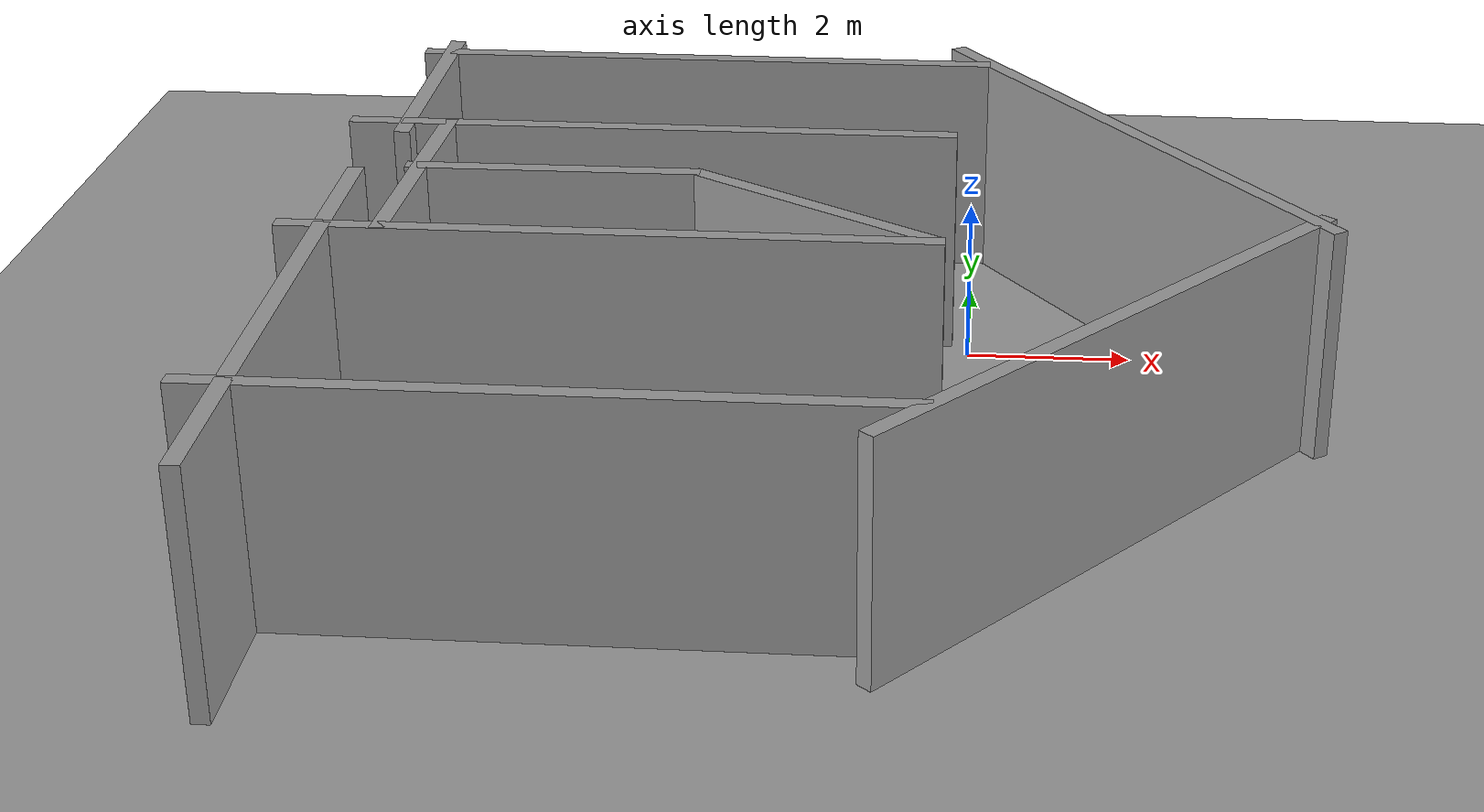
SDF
<sdf version="1.4">
 <world name="default">
  <light name="sun" type="directional">
   <pose>0 0 10 0 -0 0</pose>
   <diffuse>0.8 0.8 0.8 1</diffuse>
   <specular>0.2 0.2 0.2 1</specular>
   <attenuation>
    <range>1000</range>
    <constant>0.9</constant>
    <linear>0.01</linear>
    <quadratic>0.001</quadratic>
   </attenuation>
   <direction>0.5 0.1 -0.9</direction>
  </light>
  <scene><ambient>0.4 0.4 0.4 1</ambient><background>0.7 0.7 0.7 1</background><shadows>1</shadows></scene>
  <physics type="ode">
   <max_step_size>0.01</max_step_size>
   <real_time_factor>1</real_time_factor>
   <real_time_update_rate>100</real_time_update_rate>
   <gravity>0 0 -9.8</gravity>
  </physics>
  <model name="ground_plane_0">
   <static>1</static>
   <link name="link">
    <collision name="collision">
     <geometry><plane><normal>0 0 1</normal><size>100 100</size></plane></geometry>
     <surface><friction><ode><mu>100</mu><mu2>50</mu2></ode></friction></surface>
    </collision>
    <visual name="visual">
     <cast_shadows>0</cast_shadows>
     <geometry><plane><normal>0 0 1</normal><size>100 100</size></plane></geometry>
     <material>
      <script><uri>file://media/materials/scripts/gazebo.material</uri><name>Gazebo/Grey</name></script>
     </material>
    </visual>
    <velocity_decay><linear>0</linear><angular>0</angular></velocity_decay>
   </link>
   <pose>0.497681 0 0 0 -0 0</pose>
  </model>
  <spherical_coordinates>
   <surface_model>EARTH_WGS84</surface_model>
   <latitude_deg>0</latitude_deg>
   <longitude_deg>0</longitude_deg>
   <elevation>0</elevation>
   <heading_deg>0</heading_deg>
  </spherical_coordinates>
  <model name="peacock">
   <static>1</static>
   <link name="link">
    <collision name="collision">
     <geometry><plane><normal>0 0 1</normal><size>0.21 0.297</size></plane></geometry>
     <surface><friction><ode><mu>100</mu><mu2>50</mu2></ode></friction></surface>
    </collision>
    <visual name="visual">
     <pose>-8.09 -0.7 0.4 1.57 -5.55112e-17 1.57</pose>
     <cast_shadows>0</cast_shadows>
     <geometry><plane><normal>0 0 1</normal><size>0.21 0.297</size></plane></geometry>
     <material>
      <script>
       <uri>model://peacock/materials/scripts</uri>
       <uri>model://peacock/materials/textures</uri>
       <name>peacock/Image</name>
      </script>
     </material>
    </visual>
    <velocity_decay><linear>0</linear><angular>0</angular></velocity_decay>
   </link>
   <pose>1 -3 0 0 -0 0</pose>
  </model>
  <model name="grey_wall">
   <static>1</static>
   <link name="link">
    <pose>0 0 1.4 0 -0 0</pose>
    <collision name="collision"><geometry><box><size>7.5 0.2 2.8</size></box></geometry></collision>
    <visual name="visual">
     <cast_shadows>0</cast_shadows>
     <geometry><box><size>7.5 0.2 2.8</size></box></geometry>
     <material>
      <script>
       <uri>model://grey_wall/materials/scripts</uri>
       <uri>model://grey_wall/materials/textures</uri>
       <name>vrc/grey_wall</name>
      </script>
     </material>
    </visual>
    <velocity_decay><linear>0</linear><angular>0</angular></velocity_decay>
   </link>
   <pose>-3.58536 3.01081 0 0 -0 0</pose>
  </model>
  <model name="grey_wall_0">
   <static>1</static>
   <link name="link">
    <pose>0 0 1.4 0 -0 0</pose>
    <collision name="collision"><geometry><box><size>7.5 0.2 2.8</size></box></geometry></collision>
    <visual name="visual">
     <cast_shadows>0</cast_shadows>
     <geometry><box><size>7.5 0.2 2.8</size></box></geometry>
     <material>
      <script>
       <uri>model://grey_wall/materials/scripts</uri>
       <uri>model://grey_wall/materials/textures</uri>
       <name>vrc/grey_wall</name>
      </script>
     </material>
    </visual>
    <velocity_decay><linear>0</linear><angular>0</angular></velocity_decay>
   </link>
   <pose>-7.18893 -5.02246 0 0 0 -1.55669</pose>
  </model>
  <model name="grey_wall_1">
   <static>1</static>
   <link name="link">
    <pose>0 0 1.4 0 -0 0</pose>
    <collision name="collision"><geometry><box><size>7.5 0.2 2.8</size></box></geometry></collision>
    <visual name="visual">
     <cast_shadows>0</cast_shadows>
     <geometry><box><size>7.5 0.2 2.8</size></box></geometry>
     <material>
      <script>
       <uri>model://grey_wall/materials/scripts</uri>
       <uri>model://grey_wall/materials/textures</uri>
       <name>vrc/grey_wall</name>
      </script>
     </material>
    </visual>
    <velocity_decay><linear>0</linear><angular>0</angular></velocity_decay>
   </link>
   <pose>-4 -3 0 0 -0 0</pose>
  </model>
  <model name="bookshelf_0">
   <static>1</static>
   <link name="link">
    <inertial><mass>1</mass></inertial>
    <collision name="back">
     <pose>0 0.005 0.6 0 -0 0</pose>
     <geometry><box><size>0.9 0.01 1.2</size></box></geometry>
    </collision>
    <visual name="visual1">
     <pose>0 0.005 0.6 0 -0 0</pose>
     <geometry><box><size>0.9 0.01 1.2</size></box></geometry>
     <material>
      <script><uri>file://media/materials/scripts/gazebo.material</uri><name>Gazebo/Wood</name></script>
     </material>
    </visual>
    <collision name="left_side">
     <pose>0.45 -0.195 0.6 0 -0 0</pose>
     <geometry><box><size>0.02 0.4 1.2</size></box></geometry>
    </collision>
    <visual name="visual2">
     <pose>0.45 -0.195 0.6 0 -0 0</pose>
     <geometry><box><size>0.02 0.4 1.2</size></box></geometry>
     <material>
      <script><uri>file://media/materials/scripts/gazebo.material</uri><name>Gazebo/Wood</name></script>
     </material>
    </visual>
    <collision name="right_side">
     <pose>-0.45 -0.195 0.6 0 -0 0</pose>
     <geometry><box><size>0.02 0.4 1.2</size></box></geometry>
    </collision>
    <visual name="visual3">
     <pose>-0.45 -0.195 0.6 0 -0 0</pose>
     <geometry><box><size>0.02 0.4 1.2</size></box></geometry>
     <material>
      <script><uri>file://media/materials/scripts/gazebo.material</uri><name>Gazebo/Wood</name></script>
     </material>
    </visual>
    <collision name="bottom">
     <pose>0 -0.195 0.03 0 -0 0</pose>
     <geometry><box><size>0.88 0.4 0.06</size></box></geometry>
    </collision>
    <visual name="visual4">
     <pose>0 -0.195 0.03 0 -0 0</pose>
     <geometry><box><size>0.88 0.4 0.06</size></box></geometry>
     <material>
      <script><uri>file://media/materials/scripts/gazebo.material</uri><name>Gazebo/Wood</name></script>
     </material>
    </visual>
    <collision name="top">
     <pose>0 -0.195 1.19 0 -0 0</pose>
     <geometry><box><size>0.88 0.4 0.02</size></box></geometry>
    </collision>
    <visual name="visual5">
     <pose>0 -0.195 1.19 0 -0 0</pose>
     <geometry><box><size>0.88 0.4 0.02</size></box></geometry>
     <material>
      <script><uri>file://media/materials/scripts/gazebo.material</uri><name>Gazebo/Wood</name></script>
     </material>
    </visual>
    <collision name="low_shelf">
     <pose>0 -0.195 0.43 0 -0 0</pose>
     <geometry><box><size>0.88 0.4 0.02</size></box></geometry>
    </collision>
    <visual name="visual6">
     <pose>0 -0.195 0.43 0 -0 0</pose>
     <geometry><box><size>0.88 0.4 0.02</size></box></geometry>
     <material>
      <script><uri>file://media/materials/scripts/gazebo.material</uri><name>Gazebo/Wood</name></script>
     </material>
    </visual>
    <collision name="high_shelf">
     <pose>0 -0.195 0.8 0 -0 0</pose>
     <geometry><box><size>0.88 0.4 0.02</size></box></geometry>
    </collision>
    <visual name="visual7">
     <pose>0 -0.195 0.8 0 -0 0</pose>
     <geometry><box><size>0.88 0.4 0.02</size></box></geometry>
     <material>
      <script><uri>file://media/materials/scripts/gazebo.material</uri><name>Gazebo/Wood</name></script>
     </material>
    </visual>
    <velocity_decay><linear>0</linear><angular>0</angular></velocity_decay>
   </link>
   <pose>-7.07838 -4.62123 0 0 -0 1.5948</pose>
  </model>
  <model name="grey_wall_2">
   <static>1</static>
   <link name="link">
    <pose>0 0 1.4 0 -0 0</pose>
    <collision name="collision"><geometry><box><size>7.5 0.2 2.8</size></box></geometry></collision>
    <visual name="visual">
     <cast_shadows>0</cast_shadows>
     <geometry><box><size>7.5 0.2 2.8</size></box></geometry>
     <material>
      <script>
       <uri>model://grey_wall/materials/scripts</uri>
       <uri>model://grey_wall/materials/textures</uri>
       <name>vrc/grey_wall</name>
      </script>
     </material>
    </visual>
    <velocity_decay><linear>0</linear><angular>0</angular></velocity_decay>
   </link>
   <pose>-4 -7 0 0 -0 0</pose>
  </model>
  <model name="grey_wall_3">
   <static>1</static>
   <link name="link">
    <pose>0 0 1.4 0 -0 0</pose>
    <collision name="collision"><geometry><box><size>7.5 0.2 2.8</size></box></geometry></collision>
    <visual name="visual">
     <cast_shadows>0</cast_shadows>
     <geometry><box><size>7.5 0.2 2.8</size></box></geometry>
     <material>
      <script>
       <uri>model://grey_wall/materials/scripts</uri>
       <uri>model://grey_wall/materials/textures</uri>
       <name>vrc/grey_wall</name>
      </script>
     </material>
    </visual>
    <velocity_decay><linear>0</linear><angular>0</angular></velocity_decay>
   </link>
   <pose>1.58844 -4.81981 -0 0 -0 0.861197</pose>
  </model>
  <model name="grey_wall_small_0">
   <static>1</static>
   <link name="link">
    <pose>0 0 1.4 0 -0 0</pose>
    <collision name="collision"><geometry><box><size>3.5 0.2 2.8</size></box></geometry></collision>
    <visual name="visual">
     <cast_shadows>0</cast_shadows>
     <geometry><box><size>3.5 0.2 2.8</size></box></geometry>
     <material>
      <script>
       <uri>model://grey_wall_small/materials/scripts</uri>
       <uri>model://grey_wall_small/materials/textures</uri>
       <name>vrc/grey_wall_small</name>
      </script>
     </material>
    </visual>
    <velocity_decay><linear>0</linear><angular>0</angular></velocity_decay>
   </link>
   <pose>-1.79265 -2.0364 0 0 -0 2.56683</pose>
  </model>
  <model name="grey_wall_4">
   <static>1</static>
   <link name="link">
    <pose>0 0 1.4 0 -0 0</pose>
    <collision name="collision"><geometry><box><size>7.5 0.2 2.8</size></box></geometry></collision>
    <visual name="visual">
     <cast_shadows>0</cast_shadows>
     <geometry><box><size>7.5 0.2 2.8</size></box></geometry>
     <material>
      <script>
       <uri>model://grey_wall/materials/scripts</uri>
       <uri>model://grey_wall/materials/textures</uri>
       <name>vrc/grey_wall</name>
      </script>
     </material>
    </visual>
    <velocity_decay><linear>0</linear><angular>0</angular></velocity_decay>
   </link>
   <pose>-3.94978 0.347053 0 0 -0 0</pose>
  </model>
  <model name="grey_wall_small_1">
   <static>1</static>
   <link name="link">
    <pose>0 0 1.4 0 -0 0</pose>
    <collision name="collision"><geometry><box><size>3.5 0.2 2.8</size></box></geometry></collision>
    <visual name="visual">
     <cast_shadows>0</cast_shadows>
     <geometry><box><size>3.5 0.2 2.8</size></box></geometry>
     <material>
      <script>
       <uri>model://grey_wall_small/materials/scripts</uri>
       <uri>model://grey_wall_small/materials/textures</uri>
       <name>vrc/grey_wall_small</name>
      </script>
     </material>
    </visual>
    <velocity_decay><linear>0</linear><angular>0</angular></velocity_decay>
   </link>
   <pose>-6.97907 1.68977 0 0 0 -1.56773</pose>
  </model>
  <model name="grey_wall_5">
   <static>1</static>
   <link name="link">
    <pose>0 0 1.4 0 -0 0</pose>
    <collision name="collision"><geometry><box><size>7.5 0.2 2.8</size></box></geometry></collision>
    <visual name="visual">
     <cast_shadows>0</cast_shadows>
     <geometry><box><size>7.5 0.2 2.8</size></box></geometry>
     <material>
      <script>
       <uri>model://grey_wall/materials/scripts</uri>
       <uri>model://grey_wall/materials/textures</uri>
       <name>vrc/grey_wall</name>
      </script>
     </material>
    </visual>
    <velocity_decay><linear>0</linear><angular>0</angular></velocity_decay>
   </link>
   <pose>1.92118 0.615968 0 0 0 -0.947189</pose>
  </model>
  <model name="rope_0">
   <static>1</static>
   <link name="link">
    <collision name="collision">
     <geometry><plane><normal>0 0 1</normal><size>0.21 0.297</size></plane></geometry>
     <surface><friction><ode><mu>100</mu><mu2>50</mu2></ode></friction></surface>
    </collision>
    <visual name="visual">
     <pose>-6 -0.11 0.4 1.57 -0 0</pose>
     <cast_shadows>0</cast_shadows>
     <geometry><plane><normal>0 0 1</normal><size>0.21 0.297</size></plane></geometry>
     <material>
      <script>
       <uri>model://rope/materials/scripts</uri>
       <uri>model://rope/materials/textures</uri>
       <name>rope/Image</name>
      </script>
     </material>
    </visual>
    <velocity_decay><linear>0</linear><angular>0</angular></velocity_decay>
   </link>
   <pose>-0.4976 3 0 0 -0 0</pose>
  </model>
  <model name="bookshelf">
   <static>1</static>
   <link name="link">
    <inertial><mass>1</mass></inertial>
    <collision name="back">
     <pose>0 0.005 0.6 0 -0 0</pose>
     <geometry><box><size>0.9 0.01 1.2</size></box></geometry>
    </collision>
    <visual name="visual1">
     <pose>0 0.005 0.6 0 -0 0</pose>
     <geometry><box><size>0.9 0.01 1.2</size></box></geometry>
     <material>
      <script><uri>file://media/materials/scripts/gazebo.material</uri><name>Gazebo/Wood</name></script>
     </material>
    </visual>
    <collision name="left_side">
     <pose>0.45 -0.195 0.6 0 -0 0</pose>
     <geometry><box><size>0.02 0.4 1.2</size></box></geometry>
    </collision>
    <visual name="visual2">
     <pose>0.45 -0.195 0.6 0 -0 0</pose>
     <geometry><box><size>0.02 0.4 1.2</size></box></geometry>
     <material>
      <script><uri>file://media/materials/scripts/gazebo.material</uri><name>Gazebo/Wood</name></script>
     </material>
    </visual>
    <collision name="right_side">
     <pose>-0.45 -0.195 0.6 0 -0 0</pose>
     <geometry><box><size>0.02 0.4 1.2</size></box></geometry>
    </collision>
    <visual name="visual3">
     <pose>-0.45 -0.195 0.6 0 -0 0</pose>
     <geometry><box><size>0.02 0.4 1.2</size></box></geometry>
     <material>
      <script><uri>file://media/materials/scripts/gazebo.material</uri><name>Gazebo/Wood</name></script>
     </material>
    </visual>
    <collision name="bottom">
     <pose>0 -0.195 0.03 0 -0 0</pose>
     <geometry><box><size>0.88 0.4 0.06</size></box></geometry>
    </collision>
    <visual name="visual4">
     <pose>0 -0.195 0.03 0 -0 0</pose>
     <geometry><box><size>0.88 0.4 0.06</size></box></geometry>
     <material>
      <script><uri>file://media/materials/scripts/gazebo.material</uri><name>Gazebo/Wood</name></script>
     </material>
    </visual>
    <collision name="top">
     <pose>0 -0.195 1.19 0 -0 0</pose>
     <geometry><box><size>0.88 0.4 0.02</size></box></geometry>
    </collision>
    <visual name="visual5">
     <pose>0 -0.195 1.19 0 -0 0</pose>
     <geometry><box><size>0.88 0.4 0.02</size></box></geometry>
     <material>
      <script><uri>file://media/materials/scripts/gazebo.material</uri><name>Gazebo/Wood</name></script>
     </material>
    </visual>
    <collision name="low_shelf">
     <pose>0 -0.195 0.43 0 -0 0</pose>
     <geometry><box><size>0.88 0.4 0.02</size></box></geometry>
    </collision>
    <visual name="visual6">
     <pose>0 -0.195 0.43 0 -0 0</pose>
     <geometry><box><size>0.88 0.4 0.02</size></box></geometry>
     <material>
      <script><uri>file://media/materials/scripts/gazebo.material</uri><name>Gazebo/Wood</name></script>
     </material>
    </visual>
    <collision name="high_shelf">
     <pose>0 -0.195 0.8 0 -0 0</pose>
     <geometry><box><size>0.88 0.4 0.02</size></box></geometry>
    </collision>
    <visual name="visual7">
     <pose>0 -0.195 0.8 0 -0 0</pose>
     <geometry><box><size>0.88 0.4 0.02</size></box></geometry>
     <material>
      <script><uri>file://media/materials/scripts/gazebo.material</uri><name>Gazebo/Wood</name></script>
     </material>
    </visual>
    <velocity_decay><linear>0</linear><angular>0</angular></velocity_decay>
   </link>
   <pose>-7.03736 2.51933 0 0 -0 1.57595</pose>
  </model>
  <model name="bookshelf_1">
   <static>1</static>
   <link name="link">
    <inertial><mass>1</mass></inertial>
    <collision name="back">
     <pose>0 0.005 0.6 0 -0 0</pose>
     <geometry><box><size>0.9 0.01 1.2</size></box></geometry>
    </collision>
    <visual name="visual1">
     <pose>0 0.005 0.6 0 -0 0</pose>
     <geometry><box><size>0.9 0.01 1.2</size></box></geometry>
     <material>
      <script><uri>file://media/materials/scripts/gazebo.material</uri><name>Gazebo/Wood</name></script>
     </material>
    </visual>
    <collision name="left_side">
     <pose>0.45 -0.195 0.6 0 -0 0</pose>
     <geometry><box><size>0.02 0.4 1.2</size></box></geometry>
    </collision>
    <visual name="visual2">
     <pose>0.45 -0.195 0.6 0 -0 0</pose>
     <geometry><box><size>0.02 0.4 1.2</size></box></geometry>
     <material>
      <script><uri>file://media/materials/scripts/gazebo.material</uri><name>Gazebo/Wood</name></script>
     </material>
    </visual>
    <collision name="right_side">
     <pose>-0.45 -0.195 0.6 0 -0 0</pose>
     <geometry><box><size>0.02 0.4 1.2</size></box></geometry>
    </collision>
    <visual name="visual3">
     <pose>-0.45 -0.195 0.6 0 -0 0</pose>
     <geometry><box><size>0.02 0.4 1.2</size></box></geometry>
     <material>
      <script><uri>file://media/materials/scripts/gazebo.material</uri><name>Gazebo/Wood</name></script>
     </material>
    </visual>
    <collision name="bottom">
     <pose>0 -0.195 0.03 0 -0 0</pose>
     <geometry><box><size>0.88 0.4 0.06</size></box></geometry>
    </collision>
    <visual name="visual4">
     <pose>0 -0.195 0.03 0 -0 0</pose>
     <geometry><box><size>0.88 0.4 0.06</size></box></geometry>
     <material>
      <script><uri>file://media/materials/scripts/gazebo.material</uri><name>Gazebo/Wood</name></script>
     </material>
    </visual>
    <collision name="top">
     <pose>0 -0.195 1.19 0 -0 0</pose>
     <geometry><box><size>0.88 0.4 0.02</size></box></geometry>
    </collision>
    <visual name="visual5">
     <pose>0 -0.195 1.19 0 -0 0</pose>
     <geometry><box><size>0.88 0.4 0.02</size></box></geometry>
     <material>
      <script><uri>file://media/materials/scripts/gazebo.material</uri><name>Gazebo/Wood</name></script>
     </material>
    </visual>
    <collision name="low_shelf">
     <pose>0 -0.195 0.43 0 -0 0</pose>
     <geometry><box><size>0.88 0.4 0.02</size></box></geometry>
    </collision>
    <visual name="visual6">
     <pose>0 -0.195 0.43 0 -0 0</pose>
     <geometry><box><size>0.88 0.4 0.02</size></box></geometry>
     <material>
      <script><uri>file://media/materials/scripts/gazebo.material</uri><name>Gazebo/Wood</name></script>
     </material>
    </visual>
    <collision name="high_shelf">
     <pose>0 -0.195 0.8 0 -0 0</pose>
     <geometry><box><size>0.88 0.4 0.02</size></box></geometry>
    </collision>
    <visual name="visual7">
     <pose>0 -0.195 0.8 0 -0 0</pose>
     <geometry><box><size>0.88 0.4 0.02</size></box></geometry>
     <material>
      <script><uri>file://media/materials/scripts/gazebo.material</uri><name>Gazebo/Wood</name></script>
     </material>
    </visual>
    <velocity_decay><linear>0</linear><angular>0</angular></velocity_decay>
   </link>
   <pose>-1 3 0 0 -0 0</pose>
  </model>
  <model name="grey_wall_small_2">
   <static>1</static>
   <link name="link">
    <pose>0 0 1.4 0 -0 0</pose>
    <collision name="collision"><geometry><box><size>3.5 0.2 2.8</size></box></geometry></collision>
    <visual name="visual">
     <cast_shadows>0</cast_shadows>
     <geometry><box><size>3.5 0.2 2.8</size></box></geometry>
     <material>
      <script>
       <uri>model://grey_wall_small/materials/scripts</uri>
       <uri>model://grey_wall_small/materials/textures</uri>
       <name>vrc/grey_wall_small</name>
      </script>
     </material>
    </visual>
    <velocity_decay><linear>0</linear><angular>0</angular></velocity_decay>
   </link>
   <pose>-4.9274 -1.12302 0 0 -0 0.0041</pose>
  </model>
  <model name="grey_wall_small_3">
   <static>1</static>
   <link name="link">
    <pose>0 0 1.4 0 -0 0</pose>
    <collision name="collision"><geometry><box><size>3.5 0.2 2.8</size></box></geometry></collision>
    <visual name="visual">
     <cast_shadows>0</cast_shadows>
     <geometry><box><size>3.5 0.2 2.8</size></box></geometry>
     <material>
      <script>
       <uri>model://grey_wall_small/materials/scripts</uri>
       <uri>model://grey_wall_small/materials/textures</uri>
       <name>vrc/grey_wall_small</name>
      </script>
     </material>
    </visual>
    <velocity_decay><linear>0</linear><angular>0</angular></velocity_decay>
   </link>
   <pose>-6.51352 -1.32931 0 0 0 -1.59755</pose>
  </model>
 </world>
</sdf>
